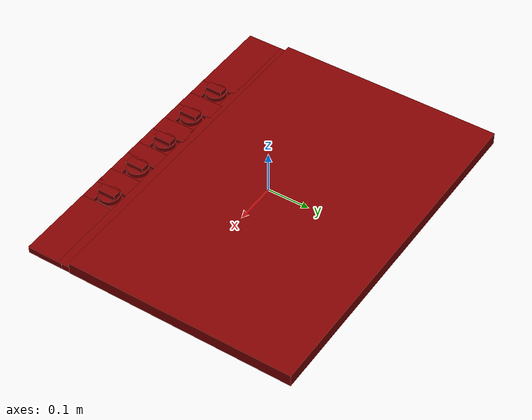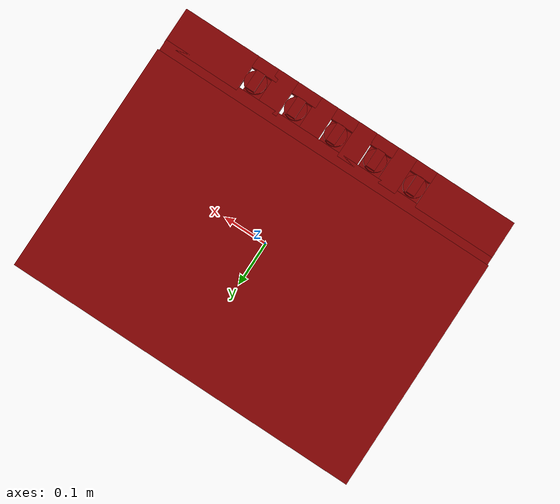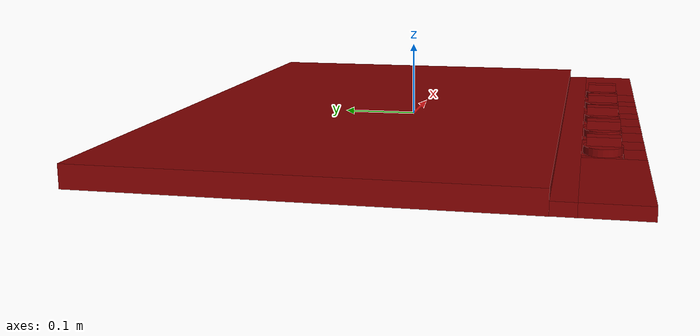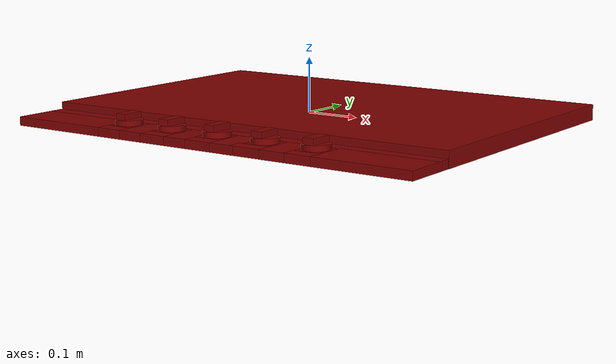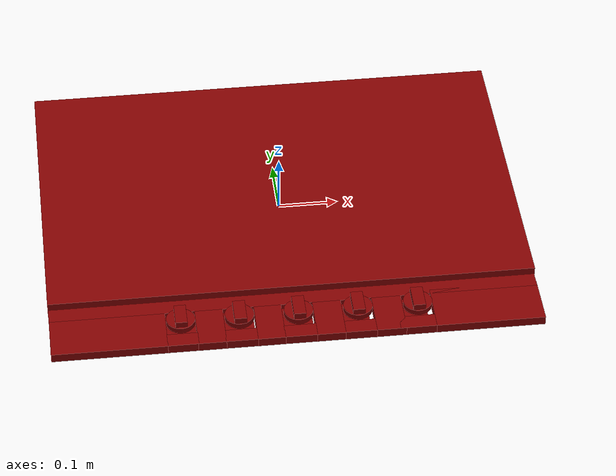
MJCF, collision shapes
<?xml version='1.0' encoding='UTF-8'?>
<mujoco model="model">
  <option timestep="0.002" gravity="0.0 0.0 -9.81"/>
  <compiler angle="radian"/>
  <asset>
    <mesh file="visuals/knob_center.obj" name="knob_center_vis"/>
    <mesh file="visuals/knob_front_left.obj" name="knob_front_left_vis"/>
    <mesh file="visuals/knob_front_right.obj" name="knob_front_right_vis"/>
    <mesh file="visuals/knob_rear_left.obj" name="knob_rear_left_vis"/>
    <mesh file="visuals/knob_rear_right.obj" name="knob_rear_right_vis"/>
    <mesh file="visuals/Body001.obj" name="Body001_vis"/>
    <texture file="visuals/T_BC001.png" name="Body001_material" type="2d"/>
    <material name="Body001_material" rgba="1 1 1 1.0" texture="Body001_material" shininess="0.1" specular="4"/>
    <texture file="visuals/T_BC001.png" name="knob_center_material" type="2d"/>
    <material name="knob_center_material" rgba="1 1 1 1.0" texture="knob_center_material" shininess="0.1" specular="4"/>
    <texture file="visuals/T_BC001.png" name="knob_front_left_material" type="2d"/>
    <material name="knob_front_left_material" rgba="1 1 1 1.0" texture="knob_front_left_material" shininess="0.1" specular="4"/>
    <texture file="visuals/T_BC001.png" name="knob_front_right_material" type="2d"/>
    <material name="knob_front_right_material" rgba="1 1 1 1.0" texture="knob_front_right_material" shininess="0.1" specular="4"/>
    <texture file="visuals/T_BC001.png" name="knob_rear_left_material" type="2d"/>
    <material name="knob_rear_left_material" rgba="1 1 1 1.0" texture="knob_rear_left_material" shininess="0.1" specular="4"/>
    <texture file="visuals/T_BC001.png" name="knob_rear_right_material" type="2d"/>
    <material name="knob_rear_right_material" rgba="1 1 1 1.0" texture="knob_rear_right_material" shininess="0.1" specular="4"/>
  </asset>
  <default>
    <default class="visual">
      <geom conaffinity="0" contype="0" group="1" type="mesh"/>
    </default>
    <default class="collision">
      <geom group="0" rgba="0.5 0 0 0.5"/>
    </default>
    <default class="spawn">
      <geom group="0" rgba="1 1 1 0.5" contype="0" conaffinity="0"/>
      <site group="0" rgba="1 1 1 0.5"/>
    </default>
    <default class="region">
      <geom group="1" conaffinity="0" contype="0" rgba="0 1 0 0"/>
    </default>
  </default>
  <worldbody>
    <body>
      <body name="object">
        <geom mesh="Body001_vis" type="mesh" solimp="0.998 0.998 0.001" solref="0.001 1" friction="0.95 0.3 0.1" class="visual" material="Body001_material"/>
        <geom class="collision" type="box" pos="0.0 0.052792005240917206 -0.004470415413379669" size="0.40665075182914734 0.2664267420768738 0.0145326629281044" quat="1.0 0.0 0.0 0.0" density="1000.0"/>
        <geom class="collision" type="box" pos="-0.31084856390953064 -0.2760709524154663 -0.011071233078837395" size="0.09508118778467178 0.04250404238700867 0.007931571453809738" quat="1.0 0.0 0.0 0.0" density="1000.0"/>
        <geom class="collision" type="box" pos="0.3159588873386383 -0.2760709524154663 -0.011071233078837395" size="0.0902787521481514 0.04250416159629822 0.007931571453809738" quat="1.0 0.0 0.0 0.0" density="1000.0"/>
        <geom class="collision" type="box" pos="0.151401087641716 -0.2760709524154663 -0.01107123214751482" size="0.02432423084974289 0.0425044484436512 0.007931560277938843" quat="1.0 0.0 0.0 0.0" density="1000.0"/>
        <geom class="collision" type="box" pos="0.051990680396556854 -0.2760709524154663 -0.01107123214751482" size="0.02357698231935501 0.0425041988492012 0.007931475527584553" quat="1.0 0.0 0.0 0.0" density="1000.0"/>
        <geom class="collision" type="box" pos="-0.04605758562684059 -0.2760709524154663 -0.01107123214751482" size="0.022580014541745186 0.0425044484436512 0.007931560277938843" quat="1.0 0.0 0.0 0.0" density="1000.0"/>
        <geom class="collision" type="box" pos="-0.143392875790596 -0.2760709524154663 -0.01107123214751482" size="0.023163996636867523 0.0425044484436512 0.007931560277938843" quat="1.0 0.0 0.0 0.0" density="1000.0"/>
        <geom class="collision" type="box" pos="-0.1908503919839859 -0.3051688075065613 -0.01107123214751482" size="0.025494789704680443 0.013304648920893669 0.007931561209261417" quat="1.0 0.0 0.0 0.0" density="1000.0"/>
        <geom class="collision" type="box" pos="-0.0944426879286766 -0.3051688075065613 -0.01107123214751482" size="0.026854442432522774 0.013304654508829117 0.007931561209261417" quat="1.0 0.0 0.0 0.0" density="1000.0"/>
        <geom class="collision" type="box" pos="0.002340880688279867 -0.3051688075065613 -0.01107123214751482" size="0.026541121304035187 0.013304660096764565 0.007931561209261417" quat="1.0 0.0 0.0 0.0" density="1000.0"/>
        <geom class="collision" type="box" pos="0.09796247631311417 -0.3051688075065613 -0.01107123214751482" size="0.029674528166651726 0.013304665684700012 0.007931561209261417" quat="1.0 0.0 0.0 0.0" density="1000.0"/>
        <geom class="collision" type="box" pos="0.19612006843090057 -0.3051688075065613 -0.01107123214751482" size="0.03022901900112629 0.01330467127263546 0.007931561209261417" quat="1.0 0.0 0.0 0.0" density="1000.0"/>
        <geom class="collision" type="box" pos="-0.00010931864380836487 -0.22484439611434937 -0.011071235872805119" size="0.4059830904006958 0.016867902129888535 0.00793161615729332" quat="1.0 0.0 0.0 0.0" density="1000.0"/>
        <geom class="collision" type="box" pos="-0.19059942662715912 -0.2662595510482788 -0.01589604653418064" size="0.025160517543554306 0.024959363043308258 0.002985046710819006" quat="1.0 0.0 0.0 0.0" density="1000.0"/>
        <geom class="collision" type="box" pos="-0.09604192525148392 -0.2662595510482788 -0.01589604653418064" size="0.025160517543554306 0.024959363043308258 0.002985048806294799" quat="1.0 0.0 0.0 0.0" density="1000.0"/>
        <geom class="collision" type="box" pos="0.0007231472991406918 -0.2662595510482788 -0.01589604653418064" size="0.025160517543554306 0.024959363043308258 0.0029850511346012354" quat="1.0 0.0 0.0 0.0" density="1000.0"/>
        <geom class="collision" type="box" pos="0.09454479068517685 -0.2662595510482788 -0.01589604653418064" size="0.025160517543554306 0.024959363043308258 0.002985053462907672" quat="1.0 0.0 0.0 0.0" density="1000.0"/>
        <geom class="collision" type="box" pos="0.1913098692893982 -0.2662595510482788 -0.01589604653418064" size="0.025160517543554306 0.024959363043308258 0.0029850557912141085" quat="1.0 0.0 0.0 0.0" density="1000.0"/>
        <body name="knob_center">
          <joint axis="0.0 0.0 1.0" pos="0.00398429436609149 -0.2669505178928375 0.003643471747636795" limited="true" name="knob_center_joint" range="0.0 3.141592653589793" type="hinge" damping="0.05" armature="0.001" springref="-0.01"/>
          <geom mesh="knob_center_vis" type="mesh" solimp="0.998 0.998 0.001" solref="0.001 1" friction="0.95 0.3 0.1" class="visual" material="knob_center_material"/>
          <geom class="collision" type="cylinder" pos="0.002909435424953699 -0.26711785793304443 0.0022059797775000334" size="0.024132415652275085 0.004998958203941584" quat="1.0 0.0 0.0 0.0" density="1000.0"/>
          <geom class="collision" type="box" pos="0.0032763085328042507 -0.26741015911102295 0.012395432218909264" size="0.010110489092767239 0.021235371008515358 0.006173048168420792" quat="1.0 0.0 0.0 0.0" density="1000.0"/>
        </body>
        <body name="knob_front_left">
          <joint axis="0.0 0.0 1.0" pos="-0.19130390882492065 -0.2669505178928375 0.003643471747636795" limited="true" name="knob_front_left_joint" range="0.0 3.141592653589793" type="hinge" damping="0.05" armature="0.001" springref="-0.01"/>
          <geom mesh="knob_front_left_vis" type="mesh" solimp="0.998 0.998 0.001" solref="0.001 1" friction="0.95 0.3 0.1" class="visual" material="knob_front_left_material"/>
          <geom class="collision" type="cylinder" pos="-0.19124412536621094 -0.2673732340335846 0.0022335187532007694" size="0.02397717535495758 0.004874209873378277" quat="1.0 0.0 0.0 0.0" density="1000.0"/>
          <geom class="collision" type="box" pos="-0.19123807549476624 -0.2678348422050476 0.013128822669386864" size="0.009726863354444504 0.020429808646440506 0.005324434954673052" quat="1.0 0.0 0.0 0.0" density="1000.0"/>
        </body>
        <body name="knob_front_right">
          <joint axis="0.0 0.0 1.0" pos="0.20131655037403107 -0.2669505178928375 0.003643471747636795" limited="true" name="knob_front_right_joint" range="0.0 3.141592653589793" type="hinge" damping="0.05" armature="0.001" springref="-0.01"/>
          <geom mesh="knob_front_right_vis" type="mesh" solimp="0.998 0.998 0.001" solref="0.001 1" friction="0.95 0.3 0.1" class="visual" material="knob_front_right_material"/>
          <geom class="collision" type="cylinder" pos="0.20061686635017395 -0.26711785793304443 0.0022972743026912212" size="0.024132415652275085 0.004873207770287991" quat="1.0 0.0 0.0 0.0" density="1000.0"/>
          <geom class="collision" type="box" pos="0.2007334679365158 -0.26778513193130493 0.012814171612262726" size="0.010110489092767239 0.021235371008515358 0.005524335894733667" quat="1.0 0.0 0.0 0.0" density="1000.0"/>
        </body>
        <body name="knob_rear_left">
          <joint axis="0.0 0.0 1.0" pos="-0.09303737431764603 -0.2669505178928375 0.003643471747636795" limited="true" name="knob_rear_left_joint" range="0.0 3.141592653589793" type="hinge" damping="0.05" armature="0.001" springref="-0.01"/>
          <geom mesh="knob_rear_left_vis" type="mesh" solimp="0.998 0.998 0.001" solref="0.001 1" friction="0.95 0.3 0.1" class="visual" material="knob_rear_left_material"/>
          <geom class="collision" type="cylinder" pos="-0.09463334083557129 -0.26711785793304443 0.002315462101250887" size="0.024132415652275085 0.005001436918973923" quat="1.0 0.0 0.0 0.0" density="1000.0"/>
          <geom class="collision" type="box" pos="-0.09421432018280029 -0.26816004514694214 0.01281689666211605" size="0.010110489092767239 0.021235371008515358 0.005556535441428423" quat="1.0 0.0 0.0 0.0" density="1000.0"/>
        </body>
        <body name="knob_rear_right">
          <joint axis="0.0 0.0 1.0" pos="0.10140924900770187 -0.2669505178928375 0.003643471747636795" limited="true" name="knob_rear_right_joint" range="0.0 3.141592653589793" type="hinge" damping="0.05" armature="0.001" springref="-0.01"/>
          <geom mesh="knob_rear_right_vis" type="mesh" solimp="0.998 0.998 0.001" solref="0.001 1" friction="0.95 0.3 0.1" class="visual" material="knob_rear_right_material"/>
          <geom class="collision" type="cylinder" pos="0.10136689990758896 -0.26711785793304443 0.0021881682332605124" size="0.024132415652275085 0.004958075936883688" quat="1.0 0.0 0.0 0.0" density="1000.0"/>
          <geom class="collision" type="box" pos="0.10090254247188568 -0.26797258853912354 0.013226905837655067" size="0.010110489092767239 0.021235182881355286 0.005123273469507694" quat="1.0 0.0 0.0 0.0" density="1000.0"/>
        </body>
        <site type="cylinder" rgba="0.3 0.4 1 0.5" size="0.028648633509874344 0.003875765250995755" pos="-0.0004984599654562771 0.023989534005522728 -0.005170395597815514" name="burner_on_center"/>
        <site type="cylinder" rgba="0.3 0.4 1 0.5" size="0.03172028064727783 0.002328688744455576" pos="-0.2492201030254364 -0.09618552774190903 -0.004426276311278343" name="burner_on_front_left"/>
        <site type="cylinder" rgba="0.3 0.4 1 0.5" size="0.028645798563957214 0.0029305194038897753" pos="0.25073909759521484 -0.09234857559204102 -0.004414359573274851" name="burner_on_front_right"/>
        <site type="cylinder" rgba="0.3 0.4 1 0.5" size="0.05701816827058792 0.0030696450266987085" pos="0.249232217669487 0.1415102630853653 -0.0029014272149652243" name="burner_on_rear_right"/>
        <site type="cylinder" rgba="0.3 0.4 1 0.5" size="0.04394480213522911 0.0041139996610581875" pos="-0.2494802176952362 0.14029406011104584 -0.0033586572390049696" name="burner_on_rear_left"/>
        <geom class="region" name="reg_main" type="box" pos="0.0 0.0 -0.010710753500461578" size="0.4057403802871704 0.31852999329566956 0.007566917221993208"/>
      </body>
    </body>
  </worldbody>
  <actuator>
    <motor name="knob_center_joint_actuator" joint="knob_center_joint" gear="10"/>
    <motor name="knob_front_left_joint_actuator" joint="knob_front_left_joint" gear="10"/>
    <motor name="knob_front_right_joint_actuator" joint="knob_front_right_joint" gear="10"/>
    <motor name="knob_rear_left_joint_actuator" joint="knob_rear_left_joint" gear="10"/>
    <motor name="knob_rear_right_joint_actuator" joint="knob_rear_right_joint" gear="10"/>
  </actuator>
</mujoco>
